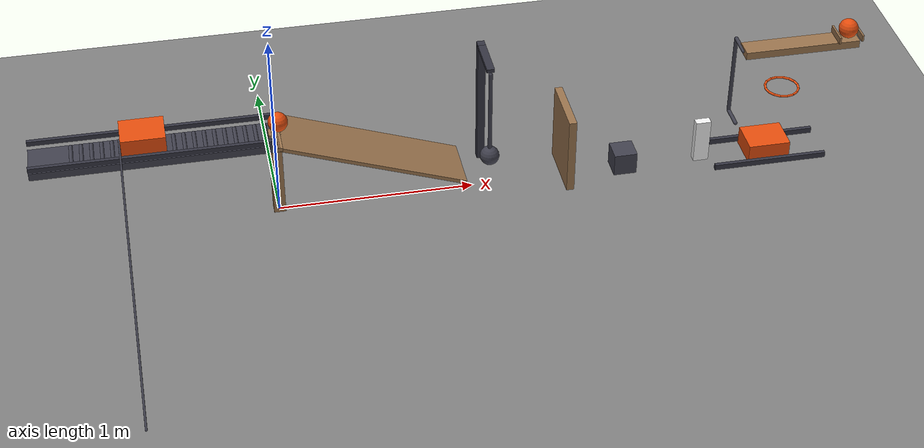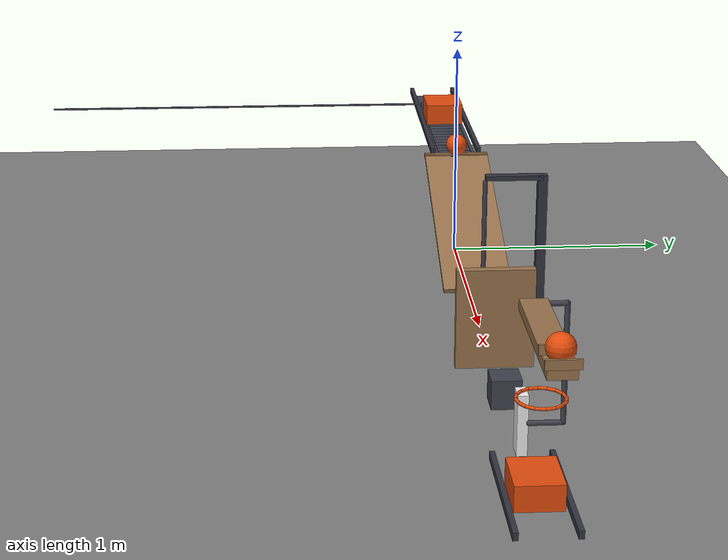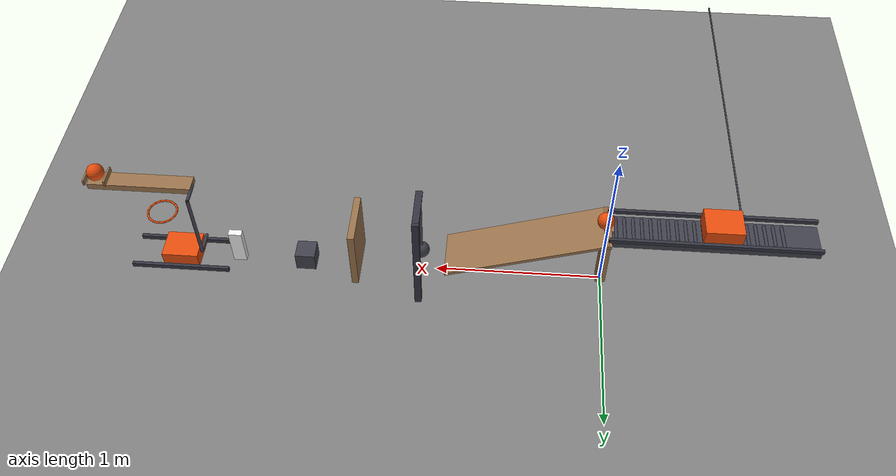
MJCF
<mujoco model="spring_cart_and_gravity_chain_approximation">
  <compiler angle="radian"/>
  <option timestep="0.002"/>
  <worldbody>
    <geom name="floor" type="plane" size="8 8 0.1" friction="0.68 0 0"/>
    <body name="ramp1">
      <geom name="ramp1_deck" type="box" pos="0.469847 0 0.311613" size="0.5 0.15 0.01" euler="0 0.349066 0" friction="0.68 0 0" solref="0.01 1" rgba="0.6 0.45 0.3 1"/>
      <geom name="ramp1_leg" type="box" pos="0 0 0.241312" size="0.03 0.03 0.241312" friction="0.68 0 0" solref="0.01 1" rgba="0.6 0.45 0.3 1"/>
    </body>
    <body name="cart1 runway">
      <geom name="cart1 runway" type="box" pos="-0.6 0 0.449005" size="0.6 0.1 0.02" friction="0.68 0 0" solref="0.01 1" rgba="0.25 0.25 0.3 1"/>
    </body>
    <body name="runway bearing1" pos="-0.991 0 0.479005">
      <freejoint/>
      <geom name="runway bearing1" type="capsule" size="0.01" fromto="0 0.07 0 0 -0.07 0" mass="0.001" friction="0.68 0 0" solref="0.01 1" rgba="0.25 0.25 0.3 1"/>
    </body>
    <body name="runway bearing2" pos="-0.941 0 0.479005">
      <freejoint/>
      <geom name="runway bearing2" type="capsule" size="0.01" fromto="0 0.07 0 0 -0.07 0" mass="0.001" friction="0.68 0 0" solref="0.01 1" rgba="0.25 0.25 0.3 1"/>
    </body>
    <body name="runway bearing3" pos="-0.891 0 0.479005">
      <freejoint/>
      <geom name="runway bearing3" type="capsule" size="0.01" fromto="0 0.07 0 0 -0.07 0" mass="0.001" friction="0.68 0 0" solref="0.01 1" rgba="0.25 0.25 0.3 1"/>
    </body>
    <body name="runway bearing4" pos="-0.841 0 0.479005">
      <freejoint/>
      <geom name="runway bearing4" type="capsule" size="0.01" fromto="0 0.07 0 0 -0.07 0" mass="0.001" friction="0.68 0 0" solref="0.01 1" rgba="0.25 0.25 0.3 1"/>
    </body>
    <body name="runway bearing5" pos="-0.791 0 0.479005">
      <freejoint/>
      <geom name="runway bearing5" type="capsule" size="0.01" fromto="0 0.07 0 0 -0.07 0" mass="0.001" friction="0.68 0 0" solref="0.01 1" rgba="0.25 0.25 0.3 1"/>
    </body>
    <body name="runway bearing6" pos="-0.741 0 0.479005">
      <freejoint/>
      <geom name="runway bearing6" type="capsule" size="0.01" fromto="0 0.07 0 0 -0.07 0" mass="0.001" friction="0.68 0 0" solref="0.01 1" rgba="0.25 0.25 0.3 1"/>
    </body>
    <body name="runway bearing7" pos="-0.691 0 0.479005">
      <freejoint/>
      <geom name="runway bearing7" type="capsule" size="0.01" fromto="0 0.07 0 0 -0.07 0" mass="0.001" friction="0.68 0 0" solref="0.01 1" rgba="0.25 0.25 0.3 1"/>
    </body>
    <body name="runway bearing8" pos="-0.641 0 0.479005">
      <freejoint/>
      <geom name="runway bearing8" type="capsule" size="0.01" fromto="0 0.07 0 0 -0.07 0" mass="0.001" friction="0.68 0 0" solref="0.01 1" rgba="0.25 0.25 0.3 1"/>
    </body>
    <body name="runway bearing9" pos="-0.591 0 0.479005">
      <freejoint/>
      <geom name="runway bearing9" type="capsule" size="0.01" fromto="0 0.07 0 0 -0.07 0" mass="0.001" friction="0.68 0 0" solref="0.01 1" rgba="0.25 0.25 0.3 1"/>
    </body>
    <body name="runway bearing10" pos="-0.541 0 0.479005">
      <freejoint/>
      <geom name="runway bearing10" type="capsule" size="0.01" fromto="0 0.07 0 0 -0.07 0" mass="0.001" friction="0.68 0 0" solref="0.01 1" rgba="0.25 0.25 0.3 1"/>
    </body>
    <body name="runway bearing11" pos="-0.491 0 0.479005">
      <freejoint/>
      <geom name="runway bearing11" type="capsule" size="0.01" fromto="0 0.07 0 0 -0.07 0" mass="0.001" friction="0.68 0 0" solref="0.01 1" rgba="0.25 0.25 0.3 1"/>
    </body>
    <body name="runway bearing12" pos="-0.441 0 0.479005">
      <freejoint/>
      <geom name="runway bearing12" type="capsule" size="0.01" fromto="0 0.07 0 0 -0.07 0" mass="0.001" friction="0.68 0 0" solref="0.01 1" rgba="0.25 0.25 0.3 1"/>
    </body>
    <body name="runway bearing13" pos="-0.391 0 0.479005">
      <freejoint/>
      <geom name="runway bearing13" type="capsule" size="0.01" fromto="0 0.07 0 0 -0.07 0" mass="0.001" friction="0.68 0 0" solref="0.01 1" rgba="0.25 0.25 0.3 1"/>
    </body>
    <body name="runway bearing14" pos="-0.341 0 0.479005">
      <freejoint/>
      <geom name="runway bearing14" type="capsule" size="0.01" fromto="0 0.07 0 0 -0.07 0" mass="0.001" friction="0.68 0 0" solref="0.01 1" rgba="0.25 0.25 0.3 1"/>
    </body>
    <body name="runway bearing15" pos="-0.291 0 0.479005">
      <freejoint/>
      <geom name="runway bearing15" type="capsule" size="0.01" fromto="0 0.07 0 0 -0.07 0" mass="0.001" friction="0.68 0 0" solref="0.01 1" rgba="0.25 0.25 0.3 1"/>
    </body>
    <body name="runway bearing16" pos="-0.241 0 0.479005">
      <freejoint/>
      <geom name="runway bearing16" type="capsule" size="0.01" fromto="0 0.07 0 0 -0.07 0" mass="0.001" friction="0.68 0 0" solref="0.01 1" rgba="0.25 0.25 0.3 1"/>
    </body>
    <body name="runway bearing17" pos="-0.191 0 0.479005">
      <freejoint/>
      <geom name="runway bearing17" type="capsule" size="0.01" fromto="0 0.07 0 0 -0.07 0" mass="0.001" friction="0.68 0 0" solref="0.01 1" rgba="0.25 0.25 0.3 1"/>
    </body>
    <body name="runway bearing18" pos="-0.141 0 0.479005">
      <freejoint/>
      <geom name="runway bearing18" type="capsule" size="0.01" fromto="0 0.07 0 0 -0.07 0" mass="0.001" friction="0.68 0 0" solref="0.01 1" rgba="0.25 0.25 0.3 1"/>
    </body>
    <body name="runway bearing19" pos="-0.091 0 0.479005">
      <freejoint/>
      <geom name="runway bearing19" type="capsule" size="0.01" fromto="0 0.07 0 0 -0.07 0" mass="0.001" friction="0.68 0 0" solref="0.01 1" rgba="0.25 0.25 0.3 1"/>
    </body>
    <body name="runway bearing20" pos="-0.041 0 0.479005">
      <freejoint/>
      <geom name="runway bearing20" type="capsule" size="0.01" fromto="0 0.07 0 0 -0.07 0" mass="0.001" friction="0.68 0 0" solref="0.01 1" rgba="0.25 0.25 0.3 1"/>
    </body>
    <body name="cart1 left guide">
      <geom name="cart1 left guide" type="box" pos="-0.6 0.11 0.501505" size="0.6 0.01 0.0125" friction="0.68 0 0" solref="0.01 1" rgba="0.2 0.2 0.25 1"/>
    </body>
    <body name="cart1 right guide">
      <geom name="cart1 right guide" type="box" pos="-0.6 -0.11 0.501505" size="0.6 0.01 0.0125" friction="0.68 0 0" solref="0.01 1" rgba="0.2 0.2 0.25 1"/>
    </body>
    <body name="cart1" pos="-0.639479 0 0.539005">
      <freejoint/>
      <geom name="cart1" type="box" pos="0 0 0" size="0.11 0.09 0.05" mass="0.5" friction="0.68 0 0" solref="0.01 1" rgba="0.9 0.3 0.05 1"/>
    </body>
    <body name="cart1 spring driver" pos="-0.754479 -2 0.539005">
      <joint name="cart1_driver_hinge" type="hinge" pos="0 0 0" axis="0 0 1" limited="true" range="-0.1 0" stiffness="72" springref="-0.1" damping="0.04"/>
      <geom name="cart1 spring driver" type="capsule" size="0.005" fromto="0 0 0 0 2 0" mass="0.005" friction="0.68 0 0" solref="0.01 1" rgba="0.25 0.25 0.3 1"/>
    </body>
    <body name="ball1 starting ledge">
      <geom name="ball1 starting ledge" type="box" pos="0.005 0 0.479005" size="0.02 0.15 0.01" friction="0.68 0 0" solref="0.01 1" rgba="0.6 0.45 0.3 1"/>
    </body>
    <body name="ball1" pos="0.020521 0 0.539005">
      <freejoint/>
      <geom name="ball1" type="sphere" pos="0 0 0" size="0.05" mass="0.2" condim="6" friction="0.68 0 0" solref="0.01 1" rgba="0.9 0.3 0.05 1"/>
    </body>
    <body name="pendulum1" pos="1.08969 0 0.68">
      <joint name="pendulum1_hinge" type="hinge" pos="0 0 0" axis="0 1 0" limited="true" range="-1.39626 0.261799" damping="0.04"/>
      <geom name="pendulum1" type="sphere" pos="0 0 -0.5" size="0.05" mass="0.15" friction="0.68 0 0" solref="0.01 1" rgba="0.25 0.25 0.3 1"/>
      <geom name="pendulum rigid rod" type="capsule" size="0.01" fromto="0 0 0 0 0 -0.45" mass="0.2" friction="0.68 0 0" solref="0.01 1" rgba="0.25 0.25 0.3 1"/>
    </body>
    <body name="pendulum support post">
      <geom name="pendulum support post" type="box" pos="1.08969 0.24 0.355" size="0.02 0.02 0.355" friction="0.68 0 0" solref="0.01 1" rgba="0.2 0.2 0.25 1"/>
    </body>
    <body name="pendulum support beam">
      <geom name="pendulum support beam" type="box" pos="1.08969 0.12 0.7" size="0.02 0.12 0.01" friction="0.68 0 0" solref="0.01 1" rgba="0.2 0.2 0.25 1"/>
    </body>
    <body name="door1" pos="1.48109 0 0.02">
      <joint name="door1_hinge" type="hinge" pos="0 0 0" axis="0 1 0" limited="true" range="0 1.22173" damping="0.04"/>
      <geom name="door1" type="box" pos="0 0 0.21" size="0.02 0.16 0.21" mass="0.45" friction="0.68 0 0" solref="0.01 1" rgba="0.6 0.45 0.3 1"/>
    </body>
    <body name="block1" pos="1.8 0 0.06">
      <freejoint/>
      <geom name="block1" type="box" pos="0 0 0" size="0.06 0.06 0.06" mass="0.35" friction="0.68 0 0" solref="0.01 1" rgba="0.25 0.25 0.3 1"/>
    </body>
    <body name="domino1" pos="2.22 0 0.12">
      <freejoint/>
      <geom name="domino1" type="box" pos="0 0 0" size="0.04 0.02 0.12" mass="0.25" friction="0.68 0 0" solref="0.01 1" rgba="0.95 0.95 0.95 1"/>
    </body>
    <body name="lever1" pos="2.7 0 0.65">
      <joint name="lever1_hinge" type="hinge" pos="0 0 0" axis="0 1 0" limited="true" range="-0.785398 0" damping="0.04"/>
      <geom name="lever1" type="box" pos="0 0 0" size="0.3 0.05 0.02" mass="0.49" friction="0.68 0 0" solref="0.01 1" rgba="0.6 0.45 0.3 1"/>
      <geom name="lever striker top crossbar" type="capsule" size="0.01" fromto="-0.3 0 0 -0.3 0.12 0" mass="0.001" friction="0.68 0 0" solref="0.01 1" rgba="0.25 0.25 0.3 1"/>
      <geom name="lever striker vertical" type="capsule" size="0.01" fromto="-0.3 0.12 0 -0.3 0.12 -0.45" mass="0.004" friction="0.68 0 0" solref="0.01 1" rgba="0.25 0.25 0.3 1"/>
      <geom name="lever striker foot" type="capsule" size="0.01" fromto="-0.3 0.12 -0.45 -0.3 0 -0.45" mass="0.001" friction="0.68 0 0" solref="0.01 1" rgba="0.25 0.25 0.3 1"/>
      <geom name="lever near retaining lip" type="box" pos="0.19 0 0.0375" size="0.005 0.06 0.0175" mass="0.002" friction="0.68 0 0" solref="0.01 1" rgba="0.6 0.45 0.3 1"/>
      <geom name="lever far retaining lip" type="box" pos="0.31 0 0.0375" size="0.005 0.06 0.0175" mass="0.002" friction="0.68 0 0" solref="0.01 1" rgba="0.6 0.45 0.3 1"/>
    </body>
    <body name="ball2" pos="2.95 0 0.72">
      <freejoint/>
      <geom name="ball2" type="sphere" pos="0 0 0" size="0.05" mass="0.2" condim="6" friction="0.68 0 0" solref="0.01 1" rgba="0.9 0.3 0.05 1"/>
    </body>
    <body name="ring1">
      <geom name="ring1_00" type="capsule" size="0.006" fromto="2.716 0 0.4 2.70945 0.0329108 0.4" friction="0.68 0 0" solref="0.01 1" rgba="0.9 0.3 0.05 1"/>
      <geom name="ring1_01" type="capsule" size="0.006" fromto="2.70945 0.0329108 0.4 2.69081 0.0608112 0.4" friction="0.68 0 0" solref="0.01 1" rgba="0.9 0.3 0.05 1"/>
      <geom name="ring1_02" type="capsule" size="0.006" fromto="2.69081 0.0608112 0.4 2.66291 0.0794536 0.4" friction="0.68 0 0" solref="0.01 1" rgba="0.9 0.3 0.05 1"/>
      <geom name="ring1_03" type="capsule" size="0.006" fromto="2.66291 0.0794536 0.4 2.63 0.086 0.4" friction="0.68 0 0" solref="0.01 1" rgba="0.9 0.3 0.05 1"/>
      <geom name="ring1_04" type="capsule" size="0.006" fromto="2.63 0.086 0.4 2.59709 0.0794536 0.4" friction="0.68 0 0" solref="0.01 1" rgba="0.9 0.3 0.05 1"/>
      <geom name="ring1_05" type="capsule" size="0.006" fromto="2.59709 0.0794536 0.4 2.56919 0.0608112 0.4" friction="0.68 0 0" solref="0.01 1" rgba="0.9 0.3 0.05 1"/>
      <geom name="ring1_06" type="capsule" size="0.006" fromto="2.56919 0.0608112 0.4 2.55055 0.0329108 0.4" friction="0.68 0 0" solref="0.01 1" rgba="0.9 0.3 0.05 1"/>
      <geom name="ring1_07" type="capsule" size="0.006" fromto="2.55055 0.0329108 0.4 2.544 1.0532e-17 0.4" friction="0.68 0 0" solref="0.01 1" rgba="0.9 0.3 0.05 1"/>
      <geom name="ring1_08" type="capsule" size="0.006" fromto="2.544 1.0532e-17 0.4 2.55055 -0.0329108 0.4" friction="0.68 0 0" solref="0.01 1" rgba="0.9 0.3 0.05 1"/>
      <geom name="ring1_09" type="capsule" size="0.006" fromto="2.55055 -0.0329108 0.4 2.56919 -0.0608112 0.4" friction="0.68 0 0" solref="0.01 1" rgba="0.9 0.3 0.05 1"/>
      <geom name="ring1_10" type="capsule" size="0.006" fromto="2.56919 -0.0608112 0.4 2.59709 -0.0794536 0.4" friction="0.68 0 0" solref="0.01 1" rgba="0.9 0.3 0.05 1"/>
      <geom name="ring1_11" type="capsule" size="0.006" fromto="2.59709 -0.0794536 0.4 2.63 -0.086 0.4" friction="0.68 0 0" solref="0.01 1" rgba="0.9 0.3 0.05 1"/>
      <geom name="ring1_12" type="capsule" size="0.006" fromto="2.63 -0.086 0.4 2.66291 -0.0794536 0.4" friction="0.68 0 0" solref="0.01 1" rgba="0.9 0.3 0.05 1"/>
      <geom name="ring1_13" type="capsule" size="0.006" fromto="2.66291 -0.0794536 0.4 2.69081 -0.0608112 0.4" friction="0.68 0 0" solref="0.01 1" rgba="0.9 0.3 0.05 1"/>
      <geom name="ring1_14" type="capsule" size="0.006" fromto="2.69081 -0.0608112 0.4 2.70945 -0.0329108 0.4" friction="0.68 0 0" solref="0.01 1" rgba="0.9 0.3 0.05 1"/>
      <geom name="ring1_15" type="capsule" size="0.006" fromto="2.70945 -0.0329108 0.4 2.716 -2.10639e-17 0.4" friction="0.68 0 0" solref="0.01 1" rgba="0.9 0.3 0.05 1"/>
    </body>
    <body name="cart2 left guide">
      <geom name="cart2 left guide" type="box" pos="2.57 0.11 0.015" size="0.3 0.01 0.015" friction="0.68 0 0" solref="0.01 1" rgba="0.2 0.2 0.25 1"/>
    </body>
    <body name="cart2 right guide">
      <geom name="cart2 right guide" type="box" pos="2.57 -0.11 0.015" size="0.3 0.01 0.015" friction="0.68 0 0" solref="0.01 1" rgba="0.2 0.2 0.25 1"/>
    </body>
    <body name="cart2" pos="2.57 0 0.05">
      <freejoint/>
      <geom name="cart2" type="box" pos="0 0 0" size="0.11 0.09 0.05" mass="0.5" friction="0.68 0 0" solref="0.01 1" rgba="0.9 0.3 0.05 1"/>
    </body>
  </worldbody>
  <keyframe>
    <key name="start" qpos="-0.991 0 0.479005 1 0 0 0 -0.941 0 0.479005 1 0 0 0 -0.891 0 0.479005 1 0 0 0 -0.841 0 0.479005 1 0 0 0 -0.791 0 0.479005 1 0 0 0 -0.741 0 0.479005 1 0 0 0 -0.691 0 0.479005 1 0 0 0 -0.641 0 0.479005 1 0 0 0 -0.591 0 0.479005 1 0 0 0 -0.541 0 0.479005 1 0 0 0 -0.491 0 0.479005 1 0 0 0 -0.441 0 0.479005 1 0 0 0 -0.391 0 0.479005 1 0 0 0 -0.341 0 0.479005 1 0 0 0 -0.291 0 0.479005 1 0 0 0 -0.241 0 0.479005 1 0 0 0 -0.191 0 0.479005 1 0 0 0 -0.141 0 0.479005 1 0 0 0 -0.091 0 0.479005 1 0 0 0 -0.041 0 0.479005 1 0 0 0 -0.639479 0 0.539005 1 0 0 0 0 0.020521 0 0.539005 1 0 0 0 0 0 1.8 0 0.06 1 0 0 0 2.22 0 0.12 1 0 0 0 0 2.95 0 0.72 1 0 0 0 2.57 0 0.05 1 0 0 0" qvel="0 0 0 0 0 0 0 0 0 0 0 0 0 0 0 0 0 0 0 0 0 0 0 0 0 0 0 0 0 0 0 0 0 0 0 0 0 0 0 0 0 0 0 0 0 0 0 0 0 0 0 0 0 0 0 0 0 0 0 0 0 0 0 0 0 0 0 0 0 0 0 0 0 0 0 0 0 0 0 0 0 0 0 0 0 0 0 0 0 0 0 0 0 0 0 0 0 0 0 0 0 0 0 0 0 0 0 0 0 0 0 0 0 0 0 0 0 0 0 0 0 0 0 0 0 0 0 0 0 0 0 0 0 0 0 0 0 0 0 0 0 0 0 0 0 0 0 0 0 0 0 0 0 0 0 0 0 0 0 0"/>
  </keyframe>
</mujoco>
